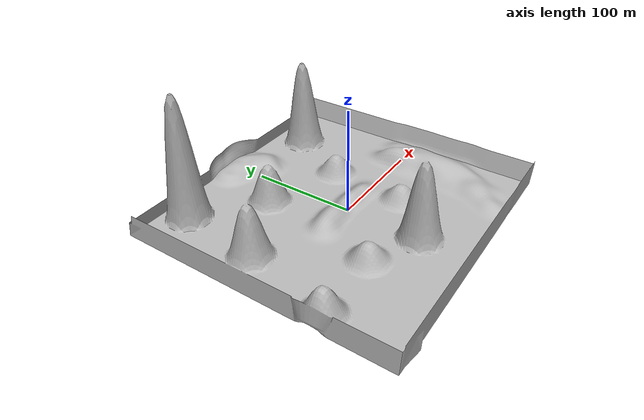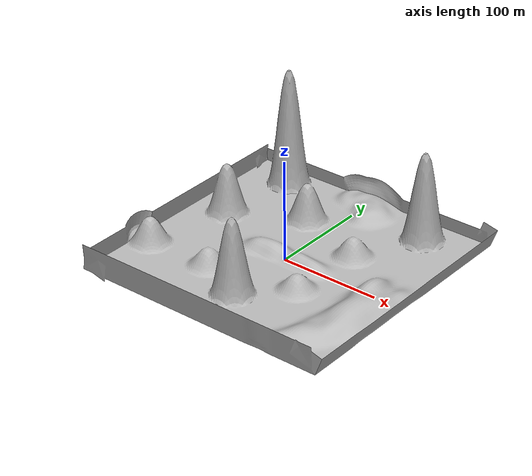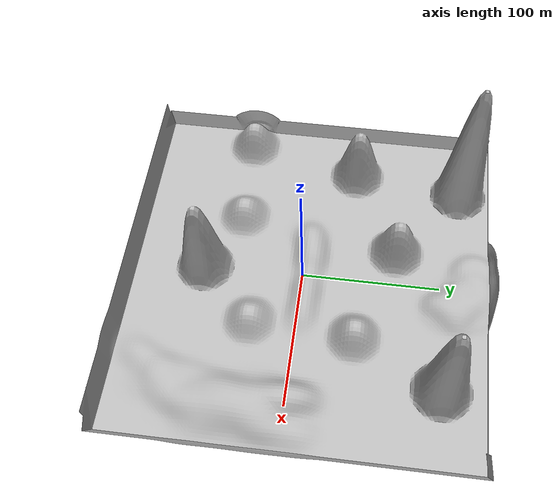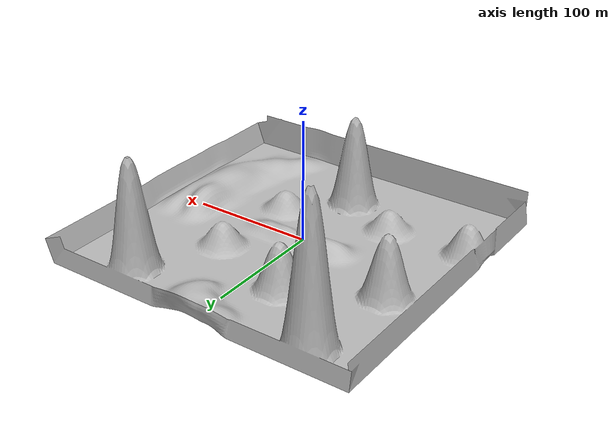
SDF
<sdf version='1.10'>
  <world name='empty'>
    <physics name='1ms' type='ignored'>
      <max_step_size>0.001</max_step_size>
      <real_time_factor>1</real_time_factor>
      <real_time_update_rate>1000</real_time_update_rate>
    </physics>
    <plugin name='gz::sim::systems::Physics' filename='gz-sim-physics-system'/>
    <plugin name='gz::sim::systems::UserCommands' filename='gz-sim-user-commands-system'/>
    <plugin name='gz::sim::systems::SceneBroadcaster' filename='gz-sim-scene-broadcaster-system'/>
    <scene>
      <grid>false</grid>
      <ambient>0.400000006 0.400000006 0.400000006 1</ambient>
      <background>0.699999988 0.699999988 0.699999988 1</background>
      <shadows>true</shadows>
    </scene>

    <spherical_coordinates>
            <surface_model>EARTH_WGS84</surface_model>
            <world_frame_orientation>ENU</world_frame_orientation>
            <latitude_deg>6.8476273</latitude_deg>
            <longitude_deg>79.9831744</longitude_deg>
            <elevation>0</elevation>
            <heading_deg>0</heading_deg>
        </spherical_coordinates>

    <gravity>0 0 -9.8000000000000007</gravity>
    <magnetic_field>5.5644999999999998e-06 2.2875799999999999e-05 -4.2388400000000002e-05</magnetic_field>
    <atmosphere type='adiabatic'/>
    <model name='WorldEnvirement'>
      <static>true</static>
      <pose>0 0 0 0 0 0</pose>
      <link name='link'>
        <collision name='collision'>
          <geometry>
            <mesh>
              <scale>20 20 20</scale>
              <uri>wld.dae</uri>
            </mesh>
          </geometry>
        </collision>
        <visual name='visual'>
          <geometry>
            <mesh>
              <scale>20 20 20</scale>
              <uri>wld.dae</uri>
            </mesh>
          </geometry>
        </visual>
        <pose>0 0 0 0 0 0</pose>
        <inertial>
          <pose>0 0 0 0 0 0</pose>
          <mass>1</mass>
          <inertia>
            <ixx>1</ixx>
            <ixy>0</ixy>
            <ixz>0</ixz>
            <iyy>1</iyy>
            <iyz>0</iyz>
            <izz>1</izz>
          </inertia>
        </inertial>
        <enable_wind>false</enable_wind>
      </link>
      <self_collide>false</self_collide>
    </model>

    <light name='sun' type='directional'>
      <pose>0 0 100 0 0 0</pose>
      <cast_shadows>true</cast_shadows>
      <intensity>1</intensity>
      <direction>0 1 1</direction>
      <diffuse>0.800000012 0.800000012 0.800000012 1</diffuse>
      <specular>0.100001 0.100001 0.100001 1</specular>
      <attenuation>
        <range>1000</range>
        <linear>1</linear>
        <constant>0.90000000000000002</constant>
        <quadratic>0.001</quadratic>
      </attenuation>
      <spot>
        <inner_angle>0</inner_angle>
        <outer_angle>0</outer_angle>
        <falloff>0</falloff>
      </spot>
    </light>
  </world>
</sdf>
